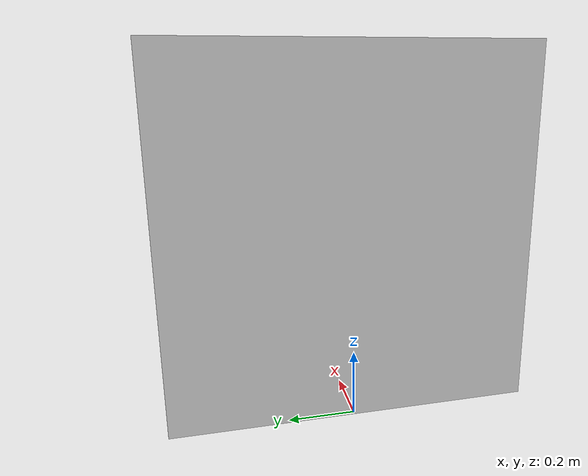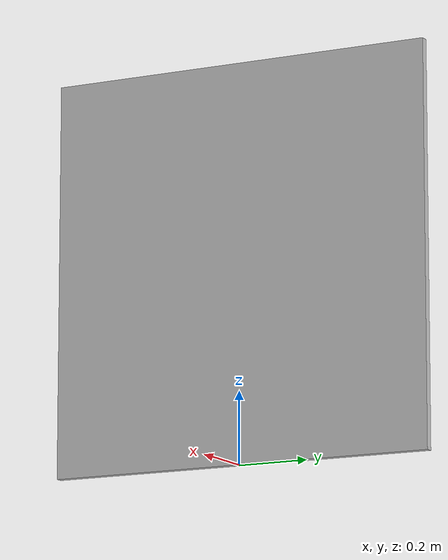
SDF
<?xml version="1.0" ?><sdf version="1.6">
  <model name="aruco-marker-ID=15">
    <static>true</static>
    <link name="link">
      <visual name="visual">
        <geometry>
          <mesh>
            <uri>model://aruco-marker-id=15/meshes/aruco-marker-ID=15.dae</uri>
          <scale>2.2 2.2 2.2</scale></mesh>
        </geometry>
      </visual>
    </link>
  </model>
</sdf>
